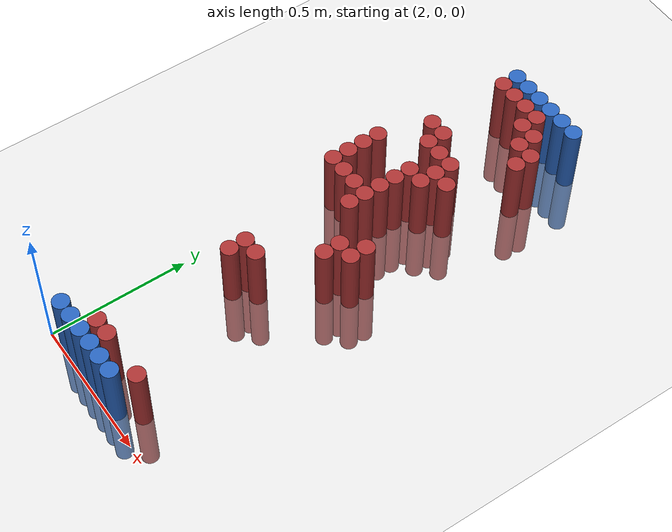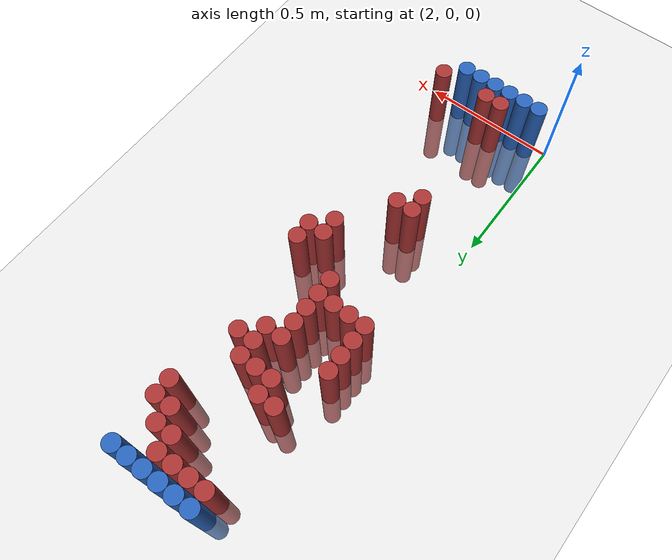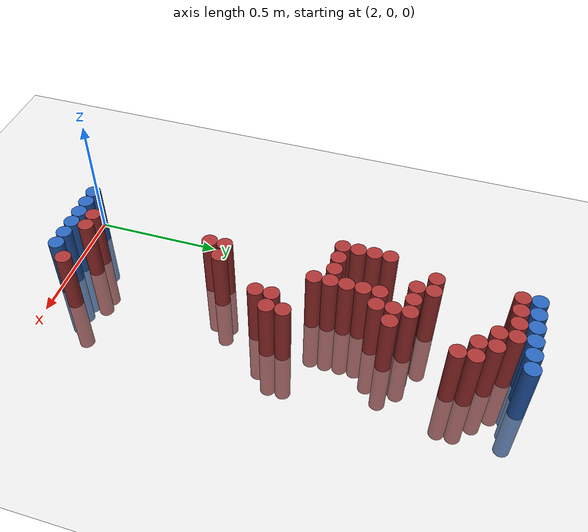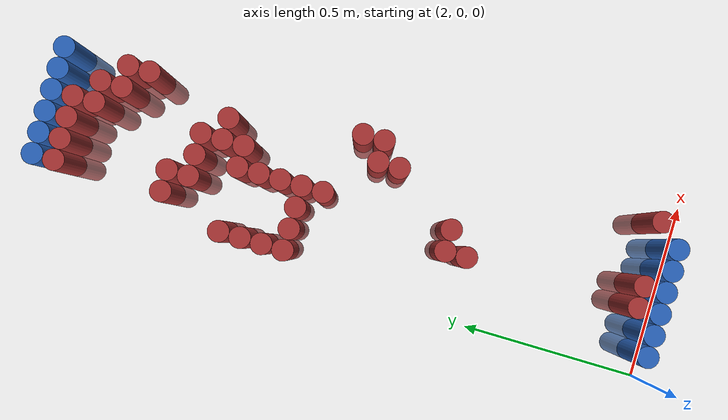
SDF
<sdf version="1.6">
 <world name="default">
  <model name="ground_plane">
   <static>1</static>
   <link name="link">
    <collision name="collision">
     <geometry><plane><normal>0 0 1</normal><size>100 100</size></plane></geometry>
     <surface><friction><ode><mu>100</mu><mu2>50</mu2></ode></friction></surface>
    </collision>
    <visual name="visual">
     <cast_shadows>0</cast_shadows>
     <geometry><plane><normal>0 0 1</normal><size>100 100</size></plane></geometry>
     <material>
      <script><uri>file://media/materials/scripts/gazebo.material</uri><name>Gazebo/Grey</name></script>
     </material>
    </visual>
   </link>
  </model>
  <model name="unit_cylinder_96">
   <static>1</static>
   <pose>2.130000 1.770000 0.000000 0.000000 0.000000 0.000000</pose>
   <link name="link">
    <inertial>
     <mass>1</mass>
     <inertia><ixx>0.145833</ixx><ixy>0</ixy><ixz>0</ixz><iyy>0.145833</iyy><iyz>0</iyz><izz>0.125</izz></inertia>
    </inertial>
    <collision name="collision">
     <geometry><cylinder><radius>0.030000</radius><length>0.5</length></cylinder></geometry>
    </collision>
    <visual name="visual">
     <geometry><cylinder><radius>0.030000</radius><length>0.5</length></cylinder></geometry>
     <material>
      <ambient>0.152000 0.379000 0.720000 1</ambient>
      <diffuse>0.152000 0.379000 0.720000 1</diffuse>
     </material>
     <material>
      <script><name>Gazebo/Grey</name><uri>file://media/materials/scripts/gazebo.material</uri></script>
     </material>
    </visual>
   </link>
  </model>
  <model name="unit_cylinder_97">
   <static>1</static>
   <pose>2.190000 1.770000 0.000000 0.000000 0.000000 0.000000</pose>
   <link name="link">
    <inertial>
     <mass>1</mass>
     <inertia><ixx>0.145833</ixx><ixy>0</ixy><ixz>0</ixz><iyy>0.145833</iyy><iyz>0</iyz><izz>0.125</izz></inertia>
    </inertial>
    <collision name="collision">
     <geometry><cylinder><radius>0.030000</radius><length>0.5</length></cylinder></geometry>
    </collision>
    <visual name="visual">
     <geometry><cylinder><radius>0.030000</radius><length>0.5</length></cylinder></geometry>
     <material>
      <ambient>0.152000 0.379000 0.720000 1</ambient>
      <diffuse>0.152000 0.379000 0.720000 1</diffuse>
     </material>
     <material>
      <script><name>Gazebo/Grey</name><uri>file://media/materials/scripts/gazebo.material</uri></script>
     </material>
    </visual>
   </link>
  </model>
  <model name="unit_cylinder_98">
   <static>1</static>
   <pose>2.250000 1.770000 0.000000 0.000000 0.000000 0.000000</pose>
   <link name="link">
    <inertial>
     <mass>1</mass>
     <inertia><ixx>0.145833</ixx><ixy>0</ixy><ixz>0</ixz><iyy>0.145833</iyy><iyz>0</iyz><izz>0.125</izz></inertia>
    </inertial>
    <collision name="collision">
     <geometry><cylinder><radius>0.030000</radius><length>0.5</length></cylinder></geometry>
    </collision>
    <visual name="visual">
     <geometry><cylinder><radius>0.030000</radius><length>0.5</length></cylinder></geometry>
     <material>
      <ambient>0.152000 0.379000 0.720000 1</ambient>
      <diffuse>0.152000 0.379000 0.720000 1</diffuse>
     </material>
     <material>
      <script><name>Gazebo/Grey</name><uri>file://media/materials/scripts/gazebo.material</uri></script>
     </material>
    </visual>
   </link>
  </model>
  <model name="unit_cylinder_99">
   <static>1</static>
   <pose>2.310000 1.770000 0.000000 0.000000 0.000000 0.000000</pose>
   <link name="link">
    <inertial>
     <mass>1</mass>
     <inertia><ixx>0.145833</ixx><ixy>0</ixy><ixz>0</ixz><iyy>0.145833</iyy><iyz>0</iyz><izz>0.125</izz></inertia>
    </inertial>
    <collision name="collision">
     <geometry><cylinder><radius>0.030000</radius><length>0.5</length></cylinder></geometry>
    </collision>
    <visual name="visual">
     <geometry><cylinder><radius>0.030000</radius><length>0.5</length></cylinder></geometry>
     <material>
      <ambient>0.152000 0.379000 0.720000 1</ambient>
      <diffuse>0.152000 0.379000 0.720000 1</diffuse>
     </material>
     <material>
      <script><name>Gazebo/Grey</name><uri>file://media/materials/scripts/gazebo.material</uri></script>
     </material>
    </visual>
   </link>
  </model>
  <model name="unit_cylinder_100">
   <static>1</static>
   <pose>2.370000 1.770000 0.000000 0.000000 0.000000 0.000000</pose>
   <link name="link">
    <inertial>
     <mass>1</mass>
     <inertia><ixx>0.145833</ixx><ixy>0</ixy><ixz>0</ixz><iyy>0.145833</iyy><iyz>0</iyz><izz>0.125</izz></inertia>
    </inertial>
    <collision name="collision">
     <geometry><cylinder><radius>0.030000</radius><length>0.5</length></cylinder></geometry>
    </collision>
    <visual name="visual">
     <geometry><cylinder><radius>0.030000</radius><length>0.5</length></cylinder></geometry>
     <material>
      <ambient>0.152000 0.379000 0.720000 1</ambient>
      <diffuse>0.152000 0.379000 0.720000 1</diffuse>
     </material>
     <material>
      <script><name>Gazebo/Grey</name><uri>file://media/materials/scripts/gazebo.material</uri></script>
     </material>
    </visual>
   </link>
  </model>
  <model name="unit_cylinder_101">
   <static>1</static>
   <pose>2.430000 1.770000 0.000000 0.000000 0.000000 0.000000</pose>
   <link name="link">
    <inertial>
     <mass>1</mass>
     <inertia><ixx>0.145833</ixx><ixy>0</ixy><ixz>0</ixz><iyy>0.145833</iyy><iyz>0</iyz><izz>0.125</izz></inertia>
    </inertial>
    <collision name="collision">
     <geometry><cylinder><radius>0.030000</radius><length>0.5</length></cylinder></geometry>
    </collision>
    <visual name="visual">
     <geometry><cylinder><radius>0.030000</radius><length>0.5</length></cylinder></geometry>
     <material>
      <ambient>0.152000 0.379000 0.720000 1</ambient>
      <diffuse>0.152000 0.379000 0.720000 1</diffuse>
     </material>
     <material>
      <script><name>Gazebo/Grey</name><uri>file://media/materials/scripts/gazebo.material</uri></script>
     </material>
    </visual>
   </link>
  </model>
  <model name="unit_cylinder_126">
   <static>1</static>
   <pose>2.130000 1.710000 0.000000 0.000000 0.000000 0.000000</pose>
   <link name="link">
    <inertial>
     <mass>1</mass>
     <inertia><ixx>0.145833</ixx><ixy>0</ixy><ixz>0</ixz><iyy>0.145833</iyy><iyz>0</iyz><izz>0.125</izz></inertia>
    </inertial>
    <collision name="collision">
     <geometry><cylinder><radius>0.030000</radius><length>0.5</length></cylinder></geometry>
    </collision>
    <visual name="visual">
     <geometry><cylinder><radius>0.030000</radius><length>0.5</length></cylinder></geometry>
     <material>
      <ambient>0.648000 0.192000 0.192000 1</ambient>
      <diffuse>0.648000 0.192000 0.192000 1</diffuse>
     </material>
     <material>
      <script><name>Gazebo/Grey</name><uri>file://media/materials/scripts/gazebo.material</uri></script>
     </material>
    </visual>
   </link>
  </model>
  <model name="unit_cylinder_127">
   <static>1</static>
   <pose>2.190000 1.710000 0.000000 0.000000 0.000000 0.000000</pose>
   <link name="link">
    <inertial>
     <mass>1</mass>
     <inertia><ixx>0.145833</ixx><ixy>0</ixy><ixz>0</ixz><iyy>0.145833</iyy><iyz>0</iyz><izz>0.125</izz></inertia>
    </inertial>
    <collision name="collision">
     <geometry><cylinder><radius>0.030000</radius><length>0.5</length></cylinder></geometry>
    </collision>
    <visual name="visual">
     <geometry><cylinder><radius>0.030000</radius><length>0.5</length></cylinder></geometry>
     <material>
      <ambient>0.648000 0.192000 0.192000 1</ambient>
      <diffuse>0.648000 0.192000 0.192000 1</diffuse>
     </material>
     <material>
      <script><name>Gazebo/Grey</name><uri>file://media/materials/scripts/gazebo.material</uri></script>
     </material>
    </visual>
   </link>
  </model>
  <model name="unit_cylinder_128">
   <static>1</static>
   <pose>2.250000 1.710000 0.000000 0.000000 0.000000 0.000000</pose>
   <link name="link">
    <inertial>
     <mass>1</mass>
     <inertia><ixx>0.145833</ixx><ixy>0</ixy><ixz>0</ixz><iyy>0.145833</iyy><iyz>0</iyz><izz>0.125</izz></inertia>
    </inertial>
    <collision name="collision">
     <geometry><cylinder><radius>0.030000</radius><length>0.5</length></cylinder></geometry>
    </collision>
    <visual name="visual">
     <geometry><cylinder><radius>0.030000</radius><length>0.5</length></cylinder></geometry>
     <material>
      <ambient>0.648000 0.192000 0.192000 1</ambient>
      <diffuse>0.648000 0.192000 0.192000 1</diffuse>
     </material>
     <material>
      <script><name>Gazebo/Grey</name><uri>file://media/materials/scripts/gazebo.material</uri></script>
     </material>
    </visual>
   </link>
  </model>
  <model name="unit_cylinder_129">
   <static>1</static>
   <pose>2.310000 1.710000 0.000000 0.000000 0.000000 0.000000</pose>
   <link name="link">
    <inertial>
     <mass>1</mass>
     <inertia><ixx>0.145833</ixx><ixy>0</ixy><ixz>0</ixz><iyy>0.145833</iyy><iyz>0</iyz><izz>0.125</izz></inertia>
    </inertial>
    <collision name="collision">
     <geometry><cylinder><radius>0.030000</radius><length>0.5</length></cylinder></geometry>
    </collision>
    <visual name="visual">
     <geometry><cylinder><radius>0.030000</radius><length>0.5</length></cylinder></geometry>
     <material>
      <ambient>0.648000 0.192000 0.192000 1</ambient>
      <diffuse>0.648000 0.192000 0.192000 1</diffuse>
     </material>
     <material>
      <script><name>Gazebo/Grey</name><uri>file://media/materials/scripts/gazebo.material</uri></script>
     </material>
    </visual>
   </link>
  </model>
  <model name="unit_cylinder_136">
   <static>1</static>
   <pose>2.310000 1.650000 0.000000 0.000000 0.000000 0.000000</pose>
   <link name="link">
    <inertial>
     <mass>1</mass>
     <inertia><ixx>0.145833</ixx><ixy>0</ixy><ixz>0</ixz><iyy>0.145833</iyy><iyz>0</iyz><izz>0.125</izz></inertia>
    </inertial>
    <collision name="collision">
     <geometry><cylinder><radius>0.030000</radius><length>0.5</length></cylinder></geometry>
    </collision>
    <visual name="visual">
     <geometry><cylinder><radius>0.030000</radius><length>0.5</length></cylinder></geometry>
     <material>
      <ambient>0.648000 0.192000 0.192000 1</ambient>
      <diffuse>0.648000 0.192000 0.192000 1</diffuse>
     </material>
     <material>
      <script><name>Gazebo/Grey</name><uri>file://media/materials/scripts/gazebo.material</uri></script>
     </material>
    </visual>
   </link>
  </model>
  <model name="unit_cylinder_137">
   <static>1</static>
   <pose>2.370000 1.650000 0.000000 0.000000 0.000000 0.000000</pose>
   <link name="link">
    <inertial>
     <mass>1</mass>
     <inertia><ixx>0.145833</ixx><ixy>0</ixy><ixz>0</ixz><iyy>0.145833</iyy><iyz>0</iyz><izz>0.125</izz></inertia>
    </inertial>
    <collision name="collision">
     <geometry><cylinder><radius>0.030000</radius><length>0.5</length></cylinder></geometry>
    </collision>
    <visual name="visual">
     <geometry><cylinder><radius>0.030000</radius><length>0.5</length></cylinder></geometry>
     <material>
      <ambient>0.648000 0.192000 0.192000 1</ambient>
      <diffuse>0.648000 0.192000 0.192000 1</diffuse>
     </material>
     <material>
      <script><name>Gazebo/Grey</name><uri>file://media/materials/scripts/gazebo.material</uri></script>
     </material>
    </visual>
   </link>
  </model>
  <model name="unit_cylinder_144">
   <static>1</static>
   <pose>2.370000 1.590000 0.000000 0.000000 0.000000 0.000000</pose>
   <link name="link">
    <inertial>
     <mass>1</mass>
     <inertia><ixx>0.145833</ixx><ixy>0</ixy><ixz>0</ixz><iyy>0.145833</iyy><iyz>0</iyz><izz>0.125</izz></inertia>
    </inertial>
    <collision name="collision">
     <geometry><cylinder><radius>0.030000</radius><length>0.5</length></cylinder></geometry>
    </collision>
    <visual name="visual">
     <geometry><cylinder><radius>0.030000</radius><length>0.5</length></cylinder></geometry>
     <material>
      <ambient>0.648000 0.192000 0.192000 1</ambient>
      <diffuse>0.648000 0.192000 0.192000 1</diffuse>
     </material>
     <material>
      <script><name>Gazebo/Grey</name><uri>file://media/materials/scripts/gazebo.material</uri></script>
     </material>
    </visual>
   </link>
  </model>
  <model name="unit_cylinder_145">
   <static>1</static>
   <pose>2.430000 1.590000 0.000000 0.000000 0.000000 0.000000</pose>
   <link name="link">
    <inertial>
     <mass>1</mass>
     <inertia><ixx>0.145833</ixx><ixy>0</ixy><ixz>0</ixz><iyy>0.145833</iyy><iyz>0</iyz><izz>0.125</izz></inertia>
    </inertial>
    <collision name="collision">
     <geometry><cylinder><radius>0.030000</radius><length>0.5</length></cylinder></geometry>
    </collision>
    <visual name="visual">
     <geometry><cylinder><radius>0.030000</radius><length>0.5</length></cylinder></geometry>
     <material>
      <ambient>0.648000 0.192000 0.192000 1</ambient>
      <diffuse>0.648000 0.192000 0.192000 1</diffuse>
     </material>
     <material>
      <script><name>Gazebo/Grey</name><uri>file://media/materials/scripts/gazebo.material</uri></script>
     </material>
    </visual>
   </link>
  </model>
  <model name="unit_cylinder_149">
   <static>1</static>
   <pose>2.430000 1.530000 0.000000 0.000000 0.000000 0.000000</pose>
   <link name="link">
    <inertial>
     <mass>1</mass>
     <inertia><ixx>0.145833</ixx><ixy>0</ixy><ixz>0</ixz><iyy>0.145833</iyy><iyz>0</iyz><izz>0.125</izz></inertia>
    </inertial>
    <collision name="collision">
     <geometry><cylinder><radius>0.030000</radius><length>0.5</length></cylinder></geometry>
    </collision>
    <visual name="visual">
     <geometry><cylinder><radius>0.030000</radius><length>0.5</length></cylinder></geometry>
     <material>
      <ambient>0.648000 0.192000 0.192000 1</ambient>
      <diffuse>0.648000 0.192000 0.192000 1</diffuse>
     </material>
     <material>
      <script><name>Gazebo/Grey</name><uri>file://media/materials/scripts/gazebo.material</uri></script>
     </material>
    </visual>
   </link>
  </model>
  <model name="unit_cylinder_153">
   <static>1</static>
   <pose>2.130000 1.410000 0.000000 0.000000 0.000000 0.000000</pose>
   <link name="link">
    <inertial>
     <mass>1</mass>
     <inertia><ixx>0.145833</ixx><ixy>0</ixy><ixz>0</ixz><iyy>0.145833</iyy><iyz>0</iyz><izz>0.125</izz></inertia>
    </inertial>
    <collision name="collision">
     <geometry><cylinder><radius>0.030000</radius><length>0.5</length></cylinder></geometry>
    </collision>
    <visual name="visual">
     <geometry><cylinder><radius>0.030000</radius><length>0.5</length></cylinder></geometry>
     <material>
      <ambient>0.648000 0.192000 0.192000 1</ambient>
      <diffuse>0.648000 0.192000 0.192000 1</diffuse>
     </material>
     <material>
      <script><name>Gazebo/Grey</name><uri>file://media/materials/scripts/gazebo.material</uri></script>
     </material>
    </visual>
   </link>
  </model>
  <model name="unit_cylinder_154">
   <static>1</static>
   <pose>2.190000 1.410000 0.000000 0.000000 0.000000 0.000000</pose>
   <link name="link">
    <inertial>
     <mass>1</mass>
     <inertia><ixx>0.145833</ixx><ixy>0</ixy><ixz>0</ixz><iyy>0.145833</iyy><iyz>0</iyz><izz>0.125</izz></inertia>
    </inertial>
    <collision name="collision">
     <geometry><cylinder><radius>0.030000</radius><length>0.5</length></cylinder></geometry>
    </collision>
    <visual name="visual">
     <geometry><cylinder><radius>0.030000</radius><length>0.5</length></cylinder></geometry>
     <material>
      <ambient>0.648000 0.192000 0.192000 1</ambient>
      <diffuse>0.648000 0.192000 0.192000 1</diffuse>
     </material>
     <material>
      <script><name>Gazebo/Grey</name><uri>file://media/materials/scripts/gazebo.material</uri></script>
     </material>
    </visual>
   </link>
  </model>
  <model name="unit_cylinder_162">
   <static>1</static>
   <pose>2.190000 1.350000 0.000000 0.000000 0.000000 0.000000</pose>
   <link name="link">
    <inertial>
     <mass>1</mass>
     <inertia><ixx>0.145833</ixx><ixy>0</ixy><ixz>0</ixz><iyy>0.145833</iyy><iyz>0</iyz><izz>0.125</izz></inertia>
    </inertial>
    <collision name="collision">
     <geometry><cylinder><radius>0.030000</radius><length>0.5</length></cylinder></geometry>
    </collision>
    <visual name="visual">
     <geometry><cylinder><radius>0.030000</radius><length>0.5</length></cylinder></geometry>
     <material>
      <ambient>0.648000 0.192000 0.192000 1</ambient>
      <diffuse>0.648000 0.192000 0.192000 1</diffuse>
     </material>
     <material>
      <script><name>Gazebo/Grey</name><uri>file://media/materials/scripts/gazebo.material</uri></script>
     </material>
    </visual>
   </link>
  </model>
  <model name="unit_cylinder_163">
   <static>1</static>
   <pose>2.250000 1.350000 0.000000 0.000000 0.000000 0.000000</pose>
   <link name="link">
    <inertial>
     <mass>1</mass>
     <inertia><ixx>0.145833</ixx><ixy>0</ixy><ixz>0</ixz><iyy>0.145833</iyy><iyz>0</iyz><izz>0.125</izz></inertia>
    </inertial>
    <collision name="collision">
     <geometry><cylinder><radius>0.030000</radius><length>0.5</length></cylinder></geometry>
    </collision>
    <visual name="visual">
     <geometry><cylinder><radius>0.030000</radius><length>0.5</length></cylinder></geometry>
     <material>
      <ambient>0.648000 0.192000 0.192000 1</ambient>
      <diffuse>0.648000 0.192000 0.192000 1</diffuse>
     </material>
     <material>
      <script><name>Gazebo/Grey</name><uri>file://media/materials/scripts/gazebo.material</uri></script>
     </material>
    </visual>
   </link>
  </model>
  <model name="unit_cylinder_164">
   <static>1</static>
   <pose>2.310000 1.350000 0.000000 0.000000 0.000000 0.000000</pose>
   <link name="link">
    <inertial>
     <mass>1</mass>
     <inertia><ixx>0.145833</ixx><ixy>0</ixy><ixz>0</ixz><iyy>0.145833</iyy><iyz>0</iyz><izz>0.125</izz></inertia>
    </inertial>
    <collision name="collision">
     <geometry><cylinder><radius>0.030000</radius><length>0.5</length></cylinder></geometry>
    </collision>
    <visual name="visual">
     <geometry><cylinder><radius>0.030000</radius><length>0.5</length></cylinder></geometry>
     <material>
      <ambient>0.648000 0.192000 0.192000 1</ambient>
      <diffuse>0.648000 0.192000 0.192000 1</diffuse>
     </material>
     <material>
      <script><name>Gazebo/Grey</name><uri>file://media/materials/scripts/gazebo.material</uri></script>
     </material>
    </visual>
   </link>
  </model>
  <model name="unit_cylinder_171">
   <static>1</static>
   <pose>2.310000 1.290000 0.000000 0.000000 0.000000 0.000000</pose>
   <link name="link">
    <inertial>
     <mass>1</mass>
     <inertia><ixx>0.145833</ixx><ixy>0</ixy><ixz>0</ixz><iyy>0.145833</iyy><iyz>0</iyz><izz>0.125</izz></inertia>
    </inertial>
    <collision name="collision">
     <geometry><cylinder><radius>0.030000</radius><length>0.5</length></cylinder></geometry>
    </collision>
    <visual name="visual">
     <geometry><cylinder><radius>0.030000</radius><length>0.5</length></cylinder></geometry>
     <material>
      <ambient>0.648000 0.192000 0.192000 1</ambient>
      <diffuse>0.648000 0.192000 0.192000 1</diffuse>
     </material>
     <material>
      <script><name>Gazebo/Grey</name><uri>file://media/materials/scripts/gazebo.material</uri></script>
     </material>
    </visual>
   </link>
  </model>
  <model name="unit_cylinder_172">
   <static>1</static>
   <pose>2.370000 1.290000 0.000000 0.000000 0.000000 0.000000</pose>
   <link name="link">
    <inertial>
     <mass>1</mass>
     <inertia><ixx>0.145833</ixx><ixy>0</ixy><ixz>0</ixz><iyy>0.145833</iyy><iyz>0</iyz><izz>0.125</izz></inertia>
    </inertial>
    <collision name="collision">
     <geometry><cylinder><radius>0.030000</radius><length>0.5</length></cylinder></geometry>
    </collision>
    <visual name="visual">
     <geometry><cylinder><radius>0.030000</radius><length>0.5</length></cylinder></geometry>
     <material>
      <ambient>0.648000 0.192000 0.192000 1</ambient>
      <diffuse>0.648000 0.192000 0.192000 1</diffuse>
     </material>
     <material>
      <script><name>Gazebo/Grey</name><uri>file://media/materials/scripts/gazebo.material</uri></script>
     </material>
    </visual>
   </link>
  </model>
  <model name="unit_cylinder_177">
   <static>1</static>
   <pose>2.070000 1.230000 0.000000 0.000000 0.000000 0.000000</pose>
   <link name="link">
    <inertial>
     <mass>1</mass>
     <inertia><ixx>0.145833</ixx><ixy>0</ixy><ixz>0</ixz><iyy>0.145833</iyy><iyz>0</iyz><izz>0.125</izz></inertia>
    </inertial>
    <collision name="collision">
     <geometry><cylinder><radius>0.030000</radius><length>0.5</length></cylinder></geometry>
    </collision>
    <visual name="visual">
     <geometry><cylinder><radius>0.030000</radius><length>0.5</length></cylinder></geometry>
     <material>
      <ambient>0.648000 0.192000 0.192000 1</ambient>
      <diffuse>0.648000 0.192000 0.192000 1</diffuse>
     </material>
     <material>
      <script><name>Gazebo/Grey</name><uri>file://media/materials/scripts/gazebo.material</uri></script>
     </material>
    </visual>
   </link>
  </model>
  <model name="unit_cylinder_178">
   <static>1</static>
   <pose>2.250000 1.230000 0.000000 0.000000 0.000000 0.000000</pose>
   <link name="link">
    <inertial>
     <mass>1</mass>
     <inertia><ixx>0.145833</ixx><ixy>0</ixy><ixz>0</ixz><iyy>0.145833</iyy><iyz>0</iyz><izz>0.125</izz></inertia>
    </inertial>
    <collision name="collision">
     <geometry><cylinder><radius>0.030000</radius><length>0.5</length></cylinder></geometry>
    </collision>
    <visual name="visual">
     <geometry><cylinder><radius>0.030000</radius><length>0.5</length></cylinder></geometry>
     <material>
      <ambient>0.648000 0.192000 0.192000 1</ambient>
      <diffuse>0.648000 0.192000 0.192000 1</diffuse>
     </material>
     <material>
      <script><name>Gazebo/Grey</name><uri>file://media/materials/scripts/gazebo.material</uri></script>
     </material>
    </visual>
   </link>
  </model>
  <model name="unit_cylinder_179">
   <static>1</static>
   <pose>2.310000 1.230000 0.000000 0.000000 0.000000 0.000000</pose>
   <link name="link">
    <inertial>
     <mass>1</mass>
     <inertia><ixx>0.145833</ixx><ixy>0</ixy><ixz>0</ixz><iyy>0.145833</iyy><iyz>0</iyz><izz>0.125</izz></inertia>
    </inertial>
    <collision name="collision">
     <geometry><cylinder><radius>0.030000</radius><length>0.5</length></cylinder></geometry>
    </collision>
    <visual name="visual">
     <geometry><cylinder><radius>0.030000</radius><length>0.5</length></cylinder></geometry>
     <material>
      <ambient>0.648000 0.192000 0.192000 1</ambient>
      <diffuse>0.648000 0.192000 0.192000 1</diffuse>
     </material>
     <material>
      <script><name>Gazebo/Grey</name><uri>file://media/materials/scripts/gazebo.material</uri></script>
     </material>
    </visual>
   </link>
  </model>
  <model name="unit_cylinder_183">
   <static>1</static>
   <pose>2.070000 1.170000 0.000000 0.000000 0.000000 0.000000</pose>
   <link name="link">
    <inertial>
     <mass>1</mass>
     <inertia><ixx>0.145833</ixx><ixy>0</ixy><ixz>0</ixz><iyy>0.145833</iyy><iyz>0</iyz><izz>0.125</izz></inertia>
    </inertial>
    <collision name="collision">
     <geometry><cylinder><radius>0.030000</radius><length>0.5</length></cylinder></geometry>
    </collision>
    <visual name="visual">
     <geometry><cylinder><radius>0.030000</radius><length>0.5</length></cylinder></geometry>
     <material>
      <ambient>0.648000 0.192000 0.192000 1</ambient>
      <diffuse>0.648000 0.192000 0.192000 1</diffuse>
     </material>
     <material>
      <script><name>Gazebo/Grey</name><uri>file://media/materials/scripts/gazebo.material</uri></script>
     </material>
    </visual>
   </link>
  </model>
  <model name="unit_cylinder_184">
   <static>1</static>
   <pose>2.250000 1.170000 0.000000 0.000000 0.000000 0.000000</pose>
   <link name="link">
    <inertial>
     <mass>1</mass>
     <inertia><ixx>0.145833</ixx><ixy>0</ixy><ixz>0</ixz><iyy>0.145833</iyy><iyz>0</iyz><izz>0.125</izz></inertia>
    </inertial>
    <collision name="collision">
     <geometry><cylinder><radius>0.030000</radius><length>0.5</length></cylinder></geometry>
    </collision>
    <visual name="visual">
     <geometry><cylinder><radius>0.030000</radius><length>0.5</length></cylinder></geometry>
     <material>
      <ambient>0.648000 0.192000 0.192000 1</ambient>
      <diffuse>0.648000 0.192000 0.192000 1</diffuse>
     </material>
     <material>
      <script><name>Gazebo/Grey</name><uri>file://media/materials/scripts/gazebo.material</uri></script>
     </material>
    </visual>
   </link>
  </model>
  <model name="unit_cylinder_188">
   <static>1</static>
   <pose>2.070000 1.110000 0.000000 0.000000 0.000000 0.000000</pose>
   <link name="link">
    <inertial>
     <mass>1</mass>
     <inertia><ixx>0.145833</ixx><ixy>0</ixy><ixz>0</ixz><iyy>0.145833</iyy><iyz>0</iyz><izz>0.125</izz></inertia>
    </inertial>
    <collision name="collision">
     <geometry><cylinder><radius>0.030000</radius><length>0.5</length></cylinder></geometry>
    </collision>
    <visual name="visual">
     <geometry><cylinder><radius>0.030000</radius><length>0.5</length></cylinder></geometry>
     <material>
      <ambient>0.648000 0.192000 0.192000 1</ambient>
      <diffuse>0.648000 0.192000 0.192000 1</diffuse>
     </material>
     <material>
      <script><name>Gazebo/Grey</name><uri>file://media/materials/scripts/gazebo.material</uri></script>
     </material>
    </visual>
   </link>
  </model>
  <model name="unit_cylinder_189">
   <static>1</static>
   <pose>2.250000 1.110000 0.000000 0.000000 0.000000 0.000000</pose>
   <link name="link">
    <inertial>
     <mass>1</mass>
     <inertia><ixx>0.145833</ixx><ixy>0</ixy><ixz>0</ixz><iyy>0.145833</iyy><iyz>0</iyz><izz>0.125</izz></inertia>
    </inertial>
    <collision name="collision">
     <geometry><cylinder><radius>0.030000</radius><length>0.5</length></cylinder></geometry>
    </collision>
    <visual name="visual">
     <geometry><cylinder><radius>0.030000</radius><length>0.5</length></cylinder></geometry>
     <material>
      <ambient>0.648000 0.192000 0.192000 1</ambient>
      <diffuse>0.648000 0.192000 0.192000 1</diffuse>
     </material>
     <material>
      <script><name>Gazebo/Grey</name><uri>file://media/materials/scripts/gazebo.material</uri></script>
     </material>
    </visual>
   </link>
  </model>
  <model name="unit_cylinder_193">
   <static>1</static>
   <pose>2.070000 1.050000 0.000000 0.000000 0.000000 0.000000</pose>
   <link name="link">
    <inertial>
     <mass>1</mass>
     <inertia><ixx>0.145833</ixx><ixy>0</ixy><ixz>0</ixz><iyy>0.145833</iyy><iyz>0</iyz><izz>0.125</izz></inertia>
    </inertial>
    <collision name="collision">
     <geometry><cylinder><radius>0.030000</radius><length>0.5</length></cylinder></geometry>
    </collision>
    <visual name="visual">
     <geometry><cylinder><radius>0.030000</radius><length>0.5</length></cylinder></geometry>
     <material>
      <ambient>0.648000 0.192000 0.192000 1</ambient>
      <diffuse>0.648000 0.192000 0.192000 1</diffuse>
     </material>
     <material>
      <script><name>Gazebo/Grey</name><uri>file://media/materials/scripts/gazebo.material</uri></script>
     </material>
    </visual>
   </link>
  </model>
  <model name="unit_cylinder_194">
   <static>1</static>
   <pose>2.130000 1.050000 0.000000 0.000000 0.000000 0.000000</pose>
   <link name="link">
    <inertial>
     <mass>1</mass>
     <inertia><ixx>0.145833</ixx><ixy>0</ixy><ixz>0</ixz><iyy>0.145833</iyy><iyz>0</iyz><izz>0.125</izz></inertia>
    </inertial>
    <collision name="collision">
     <geometry><cylinder><radius>0.030000</radius><length>0.5</length></cylinder></geometry>
    </collision>
    <visual name="visual">
     <geometry><cylinder><radius>0.030000</radius><length>0.5</length></cylinder></geometry>
     <material>
      <ambient>0.648000 0.192000 0.192000 1</ambient>
      <diffuse>0.648000 0.192000 0.192000 1</diffuse>
     </material>
     <material>
      <script><name>Gazebo/Grey</name><uri>file://media/materials/scripts/gazebo.material</uri></script>
     </material>
    </visual>
   </link>
  </model>
  <model name="unit_cylinder_195">
   <static>1</static>
   <pose>2.190000 1.050000 0.000000 0.000000 0.000000 0.000000</pose>
   <link name="link">
    <inertial>
     <mass>1</mass>
     <inertia><ixx>0.145833</ixx><ixy>0</ixy><ixz>0</ixz><iyy>0.145833</iyy><iyz>0</iyz><izz>0.125</izz></inertia>
    </inertial>
    <collision name="collision">
     <geometry><cylinder><radius>0.030000</radius><length>0.5</length></cylinder></geometry>
    </collision>
    <visual name="visual">
     <geometry><cylinder><radius>0.030000</radius><length>0.5</length></cylinder></geometry>
     <material>
      <ambient>0.648000 0.192000 0.192000 1</ambient>
      <diffuse>0.648000 0.192000 0.192000 1</diffuse>
     </material>
     <material>
      <script><name>Gazebo/Grey</name><uri>file://media/materials/scripts/gazebo.material</uri></script>
     </material>
    </visual>
   </link>
  </model>
  <model name="unit_cylinder_196">
   <static>1</static>
   <pose>2.250000 1.050000 0.000000 0.000000 0.000000 0.000000</pose>
   <link name="link">
    <inertial>
     <mass>1</mass>
     <inertia><ixx>0.145833</ixx><ixy>0</ixy><ixz>0</ixz><iyy>0.145833</iyy><iyz>0</iyz><izz>0.125</izz></inertia>
    </inertial>
    <collision name="collision">
     <geometry><cylinder><radius>0.030000</radius><length>0.5</length></cylinder></geometry>
    </collision>
    <visual name="visual">
     <geometry><cylinder><radius>0.030000</radius><length>0.5</length></cylinder></geometry>
     <material>
      <ambient>0.648000 0.192000 0.192000 1</ambient>
      <diffuse>0.648000 0.192000 0.192000 1</diffuse>
     </material>
     <material>
      <script><name>Gazebo/Grey</name><uri>file://media/materials/scripts/gazebo.material</uri></script>
     </material>
    </visual>
   </link>
  </model>
  <model name="unit_cylinder_203">
   <static>1</static>
   <pose>2.250000 0.990000 0.000000 0.000000 0.000000 0.000000</pose>
   <link name="link">
    <inertial>
     <mass>1</mass>
     <inertia><ixx>0.145833</ixx><ixy>0</ixy><ixz>0</ixz><iyy>0.145833</iyy><iyz>0</iyz><izz>0.125</izz></inertia>
    </inertial>
    <collision name="collision">
     <geometry><cylinder><radius>0.030000</radius><length>0.5</length></cylinder></geometry>
    </collision>
    <visual name="visual">
     <geometry><cylinder><radius>0.030000</radius><length>0.5</length></cylinder></geometry>
     <material>
      <ambient>0.648000 0.192000 0.192000 1</ambient>
      <diffuse>0.648000 0.192000 0.192000 1</diffuse>
     </material>
     <material>
      <script><name>Gazebo/Grey</name><uri>file://media/materials/scripts/gazebo.material</uri></script>
     </material>
    </visual>
   </link>
  </model>
  <model name="unit_cylinder_211">
   <static>1</static>
   <pose>2.430000 0.930000 0.000000 0.000000 0.000000 0.000000</pose>
   <link name="link">
    <inertial>
     <mass>1</mass>
     <inertia><ixx>0.145833</ixx><ixy>0</ixy><ixz>0</ixz><iyy>0.145833</iyy><iyz>0</iyz><izz>0.125</izz></inertia>
    </inertial>
    <collision name="collision">
     <geometry><cylinder><radius>0.030000</radius><length>0.5</length></cylinder></geometry>
    </collision>
    <visual name="visual">
     <geometry><cylinder><radius>0.030000</radius><length>0.5</length></cylinder></geometry>
     <material>
      <ambient>0.648000 0.192000 0.192000 1</ambient>
      <diffuse>0.648000 0.192000 0.192000 1</diffuse>
     </material>
     <material>
      <script><name>Gazebo/Grey</name><uri>file://media/materials/scripts/gazebo.material</uri></script>
     </material>
    </visual>
   </link>
  </model>
  <model name="unit_cylinder_220">
   <static>1</static>
   <pose>2.370000 0.870000 0.000000 0.000000 0.000000 0.000000</pose>
   <link name="link">
    <inertial>
     <mass>1</mass>
     <inertia><ixx>0.145833</ixx><ixy>0</ixy><ixz>0</ixz><iyy>0.145833</iyy><iyz>0</iyz><izz>0.125</izz></inertia>
    </inertial>
    <collision name="collision">
     <geometry><cylinder><radius>0.030000</radius><length>0.5</length></cylinder></geometry>
    </collision>
    <visual name="visual">
     <geometry><cylinder><radius>0.030000</radius><length>0.5</length></cylinder></geometry>
     <material>
      <ambient>0.648000 0.192000 0.192000 1</ambient>
      <diffuse>0.648000 0.192000 0.192000 1</diffuse>
     </material>
     <material>
      <script><name>Gazebo/Grey</name><uri>file://media/materials/scripts/gazebo.material</uri></script>
     </material>
    </visual>
   </link>
  </model>
  <model name="unit_cylinder_221">
   <static>1</static>
   <pose>2.430000 0.870000 0.000000 0.000000 0.000000 0.000000</pose>
   <link name="link">
    <inertial>
     <mass>1</mass>
     <inertia><ixx>0.145833</ixx><ixy>0</ixy><ixz>0</ixz><iyy>0.145833</iyy><iyz>0</iyz><izz>0.125</izz></inertia>
    </inertial>
    <collision name="collision">
     <geometry><cylinder><radius>0.030000</radius><length>0.5</length></cylinder></geometry>
    </collision>
    <visual name="visual">
     <geometry><cylinder><radius>0.030000</radius><length>0.5</length></cylinder></geometry>
     <material>
      <ambient>0.648000 0.192000 0.192000 1</ambient>
      <diffuse>0.648000 0.192000 0.192000 1</diffuse>
     </material>
     <material>
      <script><name>Gazebo/Grey</name><uri>file://media/materials/scripts/gazebo.material</uri></script>
     </material>
    </visual>
   </link>
  </model>
  <model name="unit_cylinder_227">
   <static>1</static>
   <pose>2.370000 0.810000 0.000000 0.000000 0.000000 0.000000</pose>
   <link name="link">
    <inertial>
     <mass>1</mass>
     <inertia><ixx>0.145833</ixx><ixy>0</ixy><ixz>0</ixz><iyy>0.145833</iyy><iyz>0</iyz><izz>0.125</izz></inertia>
    </inertial>
    <collision name="collision">
     <geometry><cylinder><radius>0.030000</radius><length>0.5</length></cylinder></geometry>
    </collision>
    <visual name="visual">
     <geometry><cylinder><radius>0.030000</radius><length>0.5</length></cylinder></geometry>
     <material>
      <ambient>0.648000 0.192000 0.192000 1</ambient>
      <diffuse>0.648000 0.192000 0.192000 1</diffuse>
     </material>
     <material>
      <script><name>Gazebo/Grey</name><uri>file://media/materials/scripts/gazebo.material</uri></script>
     </material>
    </visual>
   </link>
  </model>
  <model name="unit_cylinder_231">
   <static>1</static>
   <pose>2.190000 0.630000 0.000000 0.000000 0.000000 0.000000</pose>
   <link name="link">
    <inertial>
     <mass>1</mass>
     <inertia><ixx>0.145833</ixx><ixy>0</ixy><ixz>0</ixz><iyy>0.145833</iyy><iyz>0</iyz><izz>0.125</izz></inertia>
    </inertial>
    <collision name="collision">
     <geometry><cylinder><radius>0.030000</radius><length>0.5</length></cylinder></geometry>
    </collision>
    <visual name="visual">
     <geometry><cylinder><radius>0.030000</radius><length>0.5</length></cylinder></geometry>
     <material>
      <ambient>0.648000 0.192000 0.192000 1</ambient>
      <diffuse>0.648000 0.192000 0.192000 1</diffuse>
     </material>
     <material>
      <script><name>Gazebo/Grey</name><uri>file://media/materials/scripts/gazebo.material</uri></script>
     </material>
    </visual>
   </link>
  </model>
  <model name="unit_cylinder_232">
   <static>1</static>
   <pose>2.250000 0.630000 0.000000 0.000000 0.000000 0.000000</pose>
   <link name="link">
    <inertial>
     <mass>1</mass>
     <inertia><ixx>0.145833</ixx><ixy>0</ixy><ixz>0</ixz><iyy>0.145833</iyy><iyz>0</iyz><izz>0.125</izz></inertia>
    </inertial>
    <collision name="collision">
     <geometry><cylinder><radius>0.030000</radius><length>0.5</length></cylinder></geometry>
    </collision>
    <visual name="visual">
     <geometry><cylinder><radius>0.030000</radius><length>0.5</length></cylinder></geometry>
     <material>
      <ambient>0.648000 0.192000 0.192000 1</ambient>
      <diffuse>0.648000 0.192000 0.192000 1</diffuse>
     </material>
     <material>
      <script><name>Gazebo/Grey</name><uri>file://media/materials/scripts/gazebo.material</uri></script>
     </material>
    </visual>
   </link>
  </model>
  <model name="unit_cylinder_233">
   <static>1</static>
   <pose>2.190000 0.570000 0.000000 0.000000 0.000000 0.000000</pose>
   <link name="link">
    <inertial>
     <mass>1</mass>
     <inertia><ixx>0.145833</ixx><ixy>0</ixy><ixz>0</ixz><iyy>0.145833</iyy><iyz>0</iyz><izz>0.125</izz></inertia>
    </inertial>
    <collision name="collision">
     <geometry><cylinder><radius>0.030000</radius><length>0.5</length></cylinder></geometry>
    </collision>
    <visual name="visual">
     <geometry><cylinder><radius>0.030000</radius><length>0.5</length></cylinder></geometry>
     <material>
      <ambient>0.648000 0.192000 0.192000 1</ambient>
      <diffuse>0.648000 0.192000 0.192000 1</diffuse>
     </material>
     <material>
      <script><name>Gazebo/Grey</name><uri>file://media/materials/scripts/gazebo.material</uri></script>
     </material>
    </visual>
   </link>
  </model>
  <model name="unit_cylinder_255">
   <static>1</static>
   <pose>2.190000 0.090000 0.000000 0.000000 0.000000 0.000000</pose>
   <link name="link">
    <inertial>
     <mass>1</mass>
     <inertia><ixx>0.145833</ixx><ixy>0</ixy><ixz>0</ixz><iyy>0.145833</iyy><iyz>0</iyz><izz>0.125</izz></inertia>
    </inertial>
    <collision name="collision">
     <geometry><cylinder><radius>0.030000</radius><length>0.5</length></cylinder></geometry>
    </collision>
    <visual name="visual">
     <geometry><cylinder><radius>0.030000</radius><length>0.5</length></cylinder></geometry>
     <material>
      <ambient>0.648000 0.192000 0.192000 1</ambient>
      <diffuse>0.648000 0.192000 0.192000 1</diffuse>
     </material>
     <material>
      <script><name>Gazebo/Grey</name><uri>file://media/materials/scripts/gazebo.material</uri></script>
     </material>
    </visual>
   </link>
  </model>
  <model name="unit_cylinder_256">
   <static>1</static>
   <pose>2.250000 0.090000 0.000000 0.000000 0.000000 0.000000</pose>
   <link name="link">
    <inertial>
     <mass>1</mass>
     <inertia><ixx>0.145833</ixx><ixy>0</ixy><ixz>0</ixz><iyy>0.145833</iyy><iyz>0</iyz><izz>0.125</izz></inertia>
    </inertial>
    <collision name="collision">
     <geometry><cylinder><radius>0.030000</radius><length>0.5</length></cylinder></geometry>
    </collision>
    <visual name="visual">
     <geometry><cylinder><radius>0.030000</radius><length>0.5</length></cylinder></geometry>
     <material>
      <ambient>0.648000 0.192000 0.192000 1</ambient>
      <diffuse>0.648000 0.192000 0.192000 1</diffuse>
     </material>
     <material>
      <script><name>Gazebo/Grey</name><uri>file://media/materials/scripts/gazebo.material</uri></script>
     </material>
    </visual>
   </link>
  </model>
  <model name="unit_cylinder_257">
   <static>1</static>
   <pose>2.430000 0.090000 0.000000 0.000000 0.000000 0.000000</pose>
   <link name="link">
    <inertial>
     <mass>1</mass>
     <inertia><ixx>0.145833</ixx><ixy>0</ixy><ixz>0</ixz><iyy>0.145833</iyy><iyz>0</iyz><izz>0.125</izz></inertia>
    </inertial>
    <collision name="collision">
     <geometry><cylinder><radius>0.030000</radius><length>0.5</length></cylinder></geometry>
    </collision>
    <visual name="visual">
     <geometry><cylinder><radius>0.030000</radius><length>0.5</length></cylinder></geometry>
     <material>
      <ambient>0.648000 0.192000 0.192000 1</ambient>
      <diffuse>0.648000 0.192000 0.192000 1</diffuse>
     </material>
     <material>
      <script><name>Gazebo/Grey</name><uri>file://media/materials/scripts/gazebo.material</uri></script>
     </material>
    </visual>
   </link>
  </model>
  <model name="unit_cylinder_269">
   <static>1</static>
   <pose>2.070000 0.030000 0.000000 0.000000 0.000000 0.000000</pose>
   <link name="link">
    <inertial>
     <mass>1</mass>
     <inertia><ixx>0.145833</ixx><ixy>0</ixy><ixz>0</ixz><iyy>0.145833</iyy><iyz>0</iyz><izz>0.125</izz></inertia>
    </inertial>
    <collision name="collision">
     <geometry><cylinder><radius>0.030000</radius><length>0.5</length></cylinder></geometry>
    </collision>
    <visual name="visual">
     <geometry><cylinder><radius>0.030000</radius><length>0.5</length></cylinder></geometry>
     <material>
      <ambient>0.152000 0.379000 0.720000 1</ambient>
      <diffuse>0.152000 0.379000 0.720000 1</diffuse>
     </material>
     <material>
      <script><name>Gazebo/Grey</name><uri>file://media/materials/scripts/gazebo.material</uri></script>
     </material>
    </visual>
   </link>
  </model>
  <model name="unit_cylinder_270">
   <static>1</static>
   <pose>2.130000 0.030000 0.000000 0.000000 0.000000 0.000000</pose>
   <link name="link">
    <inertial>
     <mass>1</mass>
     <inertia><ixx>0.145833</ixx><ixy>0</ixy><ixz>0</ixz><iyy>0.145833</iyy><iyz>0</iyz><izz>0.125</izz></inertia>
    </inertial>
    <collision name="collision">
     <geometry><cylinder><radius>0.030000</radius><length>0.5</length></cylinder></geometry>
    </collision>
    <visual name="visual">
     <geometry><cylinder><radius>0.030000</radius><length>0.5</length></cylinder></geometry>
     <material>
      <ambient>0.152000 0.379000 0.720000 1</ambient>
      <diffuse>0.152000 0.379000 0.720000 1</diffuse>
     </material>
     <material>
      <script><name>Gazebo/Grey</name><uri>file://media/materials/scripts/gazebo.material</uri></script>
     </material>
    </visual>
   </link>
  </model>
  <model name="unit_cylinder_271">
   <static>1</static>
   <pose>2.190000 0.030000 0.000000 0.000000 0.000000 0.000000</pose>
   <link name="link">
    <inertial>
     <mass>1</mass>
     <inertia><ixx>0.145833</ixx><ixy>0</ixy><ixz>0</ixz><iyy>0.145833</iyy><iyz>0</iyz><izz>0.125</izz></inertia>
    </inertial>
    <collision name="collision">
     <geometry><cylinder><radius>0.030000</radius><length>0.5</length></cylinder></geometry>
    </collision>
    <visual name="visual">
     <geometry><cylinder><radius>0.030000</radius><length>0.5</length></cylinder></geometry>
     <material>
      <ambient>0.152000 0.379000 0.720000 1</ambient>
      <diffuse>0.152000 0.379000 0.720000 1</diffuse>
     </material>
     <material>
      <script><name>Gazebo/Grey</name><uri>file://media/materials/scripts/gazebo.material</uri></script>
     </material>
    </visual>
   </link>
  </model>
  <model name="unit_cylinder_272">
   <static>1</static>
   <pose>2.250000 0.030000 0.000000 0.000000 0.000000 0.000000</pose>
   <link name="link">
    <inertial>
     <mass>1</mass>
     <inertia><ixx>0.145833</ixx><ixy>0</ixy><ixz>0</ixz><iyy>0.145833</iyy><iyz>0</iyz><izz>0.125</izz></inertia>
    </inertial>
    <collision name="collision">
     <geometry><cylinder><radius>0.030000</radius><length>0.5</length></cylinder></geometry>
    </collision>
    <visual name="visual">
     <geometry><cylinder><radius>0.030000</radius><length>0.5</length></cylinder></geometry>
     <material>
      <ambient>0.152000 0.379000 0.720000 1</ambient>
      <diffuse>0.152000 0.379000 0.720000 1</diffuse>
     </material>
     <material>
      <script><name>Gazebo/Grey</name><uri>file://media/materials/scripts/gazebo.material</uri></script>
     </material>
    </visual>
   </link>
  </model>
  <model name="unit_cylinder_273">
   <static>1</static>
   <pose>2.310000 0.030000 0.000000 0.000000 0.000000 0.000000</pose>
   <link name="link">
    <inertial>
     <mass>1</mass>
     <inertia><ixx>0.145833</ixx><ixy>0</ixy><ixz>0</ixz><iyy>0.145833</iyy><iyz>0</iyz><izz>0.125</izz></inertia>
    </inertial>
    <collision name="collision">
     <geometry><cylinder><radius>0.030000</radius><length>0.5</length></cylinder></geometry>
    </collision>
    <visual name="visual">
     <geometry><cylinder><radius>0.030000</radius><length>0.5</length></cylinder></geometry>
     <material>
      <ambient>0.152000 0.379000 0.720000 1</ambient>
      <diffuse>0.152000 0.379000 0.720000 1</diffuse>
     </material>
     <material>
      <script><name>Gazebo/Grey</name><uri>file://media/materials/scripts/gazebo.material</uri></script>
     </material>
    </visual>
   </link>
  </model>
  <model name="unit_cylinder_274">
   <static>1</static>
   <pose>2.370000 0.030000 0.000000 0.000000 0.000000 0.000000</pose>
   <link name="link">
    <inertial>
     <mass>1</mass>
     <inertia><ixx>0.145833</ixx><ixy>0</ixy><ixz>0</ixz><iyy>0.145833</iyy><iyz>0</iyz><izz>0.125</izz></inertia>
    </inertial>
    <collision name="collision">
     <geometry><cylinder><radius>0.030000</radius><length>0.5</length></cylinder></geometry>
    </collision>
    <visual name="visual">
     <geometry><cylinder><radius>0.030000</radius><length>0.5</length></cylinder></geometry>
     <material>
      <ambient>0.152000 0.379000 0.720000 1</ambient>
      <diffuse>0.152000 0.379000 0.720000 1</diffuse>
     </material>
     <material>
      <script><name>Gazebo/Grey</name><uri>file://media/materials/scripts/gazebo.material</uri></script>
     </material>
    </visual>
   </link>
  </model>
 </world>
</sdf>
